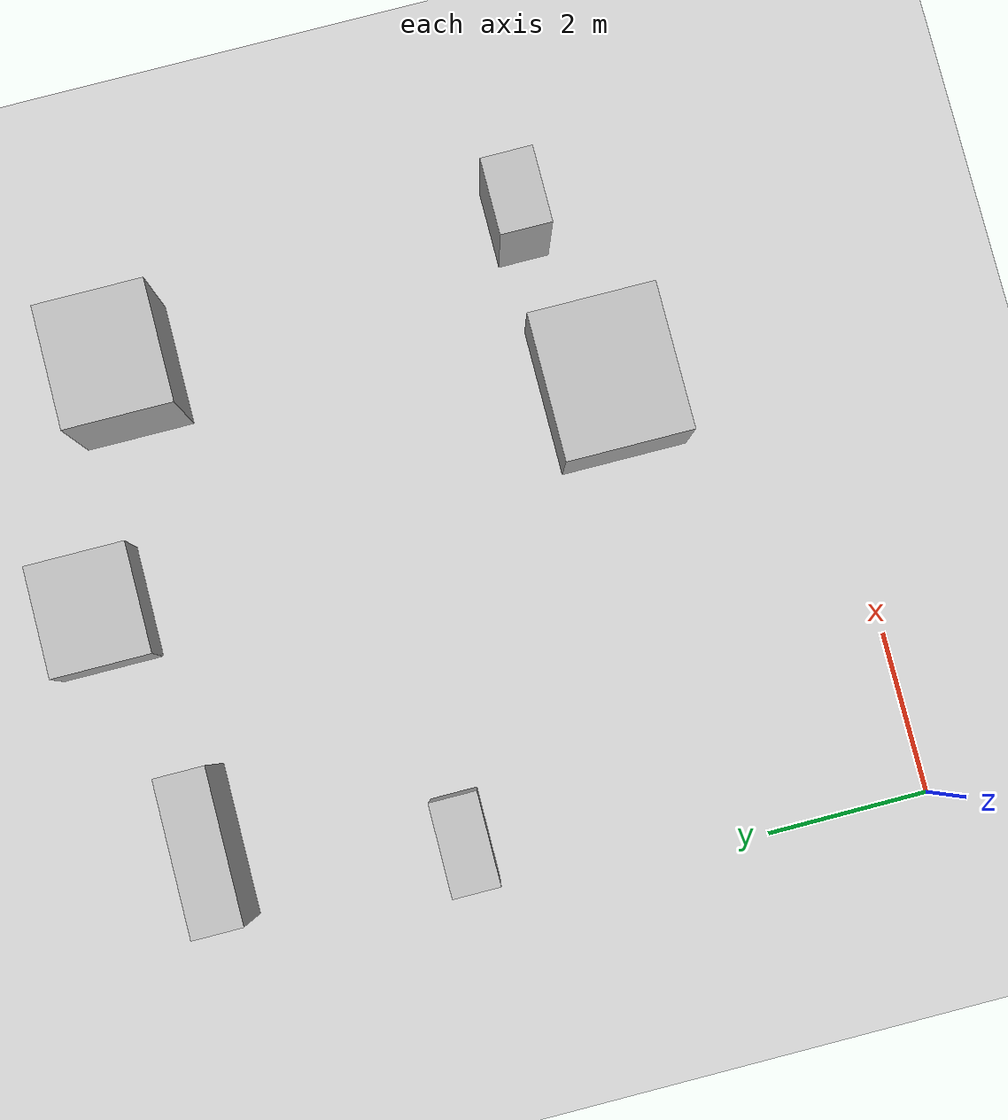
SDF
<?xml version="1.0" ?>
<sdf version="1.5">
  <world name="default">
    <include>
      <uri>model://sun</uri>
    </include>
    <include>
      <uri>model://ground_plane</uri>
    </include>

    <model name="obstacle_0">
      <pose>1.55 8.55 0.87 0 0 0</pose>
      <static>true</static>
      <link name="link">
        <collision name="collision">
          <geometry>
            <box>
              <size>1.88 0.62 1.73</size>
            </box>
          </geometry>
        </collision>
        <visual name="visual">
          <geometry>
            <box>
              <size>1.88 0.62 1.73</size>
            </box>
          </geometry>
        </visual>
      </link>
    </model>

    <model name="obstacle_1">
      <pose>8.1 3.11 0.83 0 0 0</pose>
      <static>true</static>
      <link name="link">
        <collision name="collision">
          <geometry>
            <box>
              <size>0.95 0.64 1.66</size>
            </box>
          </geometry>
        </collision>
        <visual name="visual">
          <geometry>
            <box>
              <size>0.95 0.64 1.66</size>
            </box>
          </geometry>
        </visual>
      </link>
    </model>

    <model name="obstacle_2">
      <pose>0.87 5.6 0.76 0 0 0</pose>
      <static>true</static>
      <link name="link">
        <collision name="collision">
          <geometry>
            <box>
              <size>1.13 0.58 1.53</size>
            </box>
          </geometry>
        </collision>
        <visual name="visual">
          <geometry>
            <box>
              <size>1.13 0.58 1.53</size>
            </box>
          </geometry>
        </visual>
      </link>
    </model>

    <model name="obstacle_3">
      <pose>7.42 8.27 0.84 0 0 0</pose>
      <static>true</static>
      <link name="link">
        <collision name="collision">
          <geometry>
            <box>
              <size>1.52 1.35 1.67</size>
            </box>
          </geometry>
        </collision>
        <visual name="visual">
          <geometry>
            <box>
              <size>1.52 1.35 1.67</size>
            </box>
          </geometry>
        </visual>
      </link>
    </model>

    <model name="obstacle_4">
      <pose>5.82 2.53 0.59 0 0 0</pose>
      <static>true</static>
      <link name="link">
        <collision name="collision">
          <geometry>
            <box>
              <size>1.85 1.59 1.18</size>
            </box>
          </geometry>
        </collision>
        <visual name="visual">
          <geometry>
            <box>
              <size>1.85 1.59 1.18</size>
            </box>
          </geometry>
        </visual>
      </link>
    </model>

    <model name="obstacle_5">
      <pose>4.64 9.27 0.45 0 0 0</pose>
      <static>true</static>
      <link name="link">
        <collision name="collision">
          <geometry>
            <box>
              <size>1.39 1.25 0.9</size>
            </box>
          </geometry>
        </collision>
        <visual name="visual">
          <geometry>
            <box>
              <size>1.39 1.25 0.9</size>
            </box>
          </geometry>
        </visual>
      </link>
    </model>

    <plugin
      name="bounding_box_plugin"
      filename="/home/andrea/ros_packages_aggiuntivi/devel/lib/libbounding_box_plugin.so"
    />

    </world>
</sdf>
